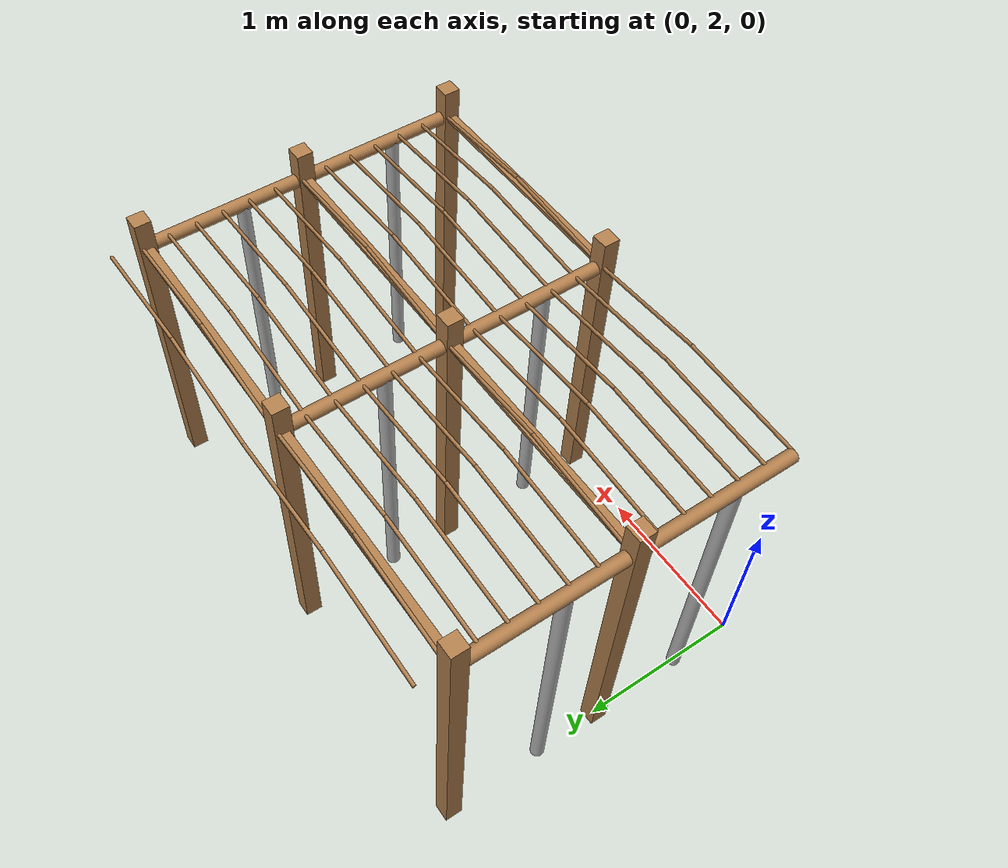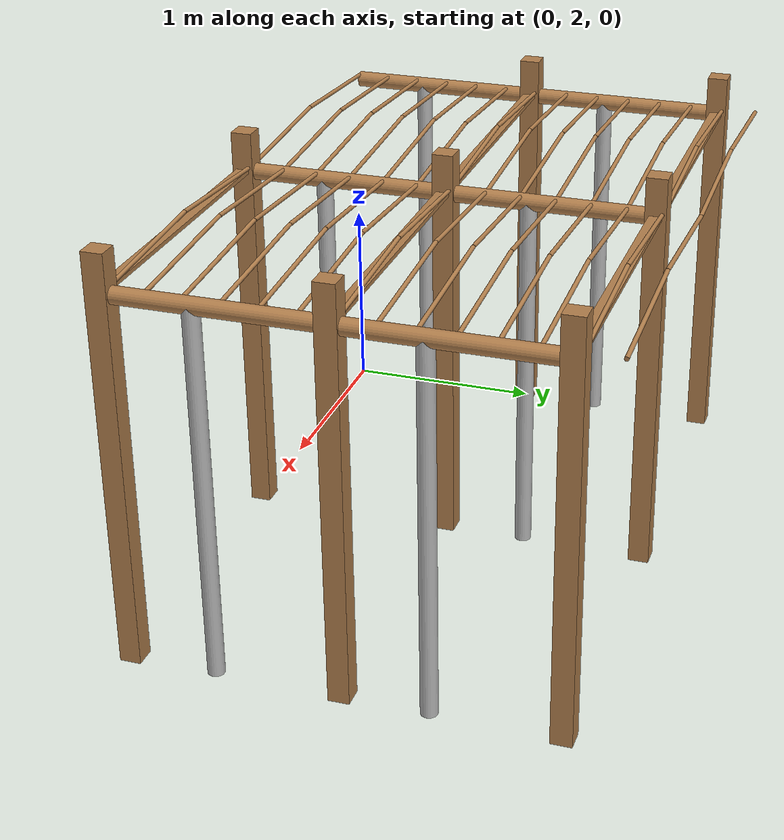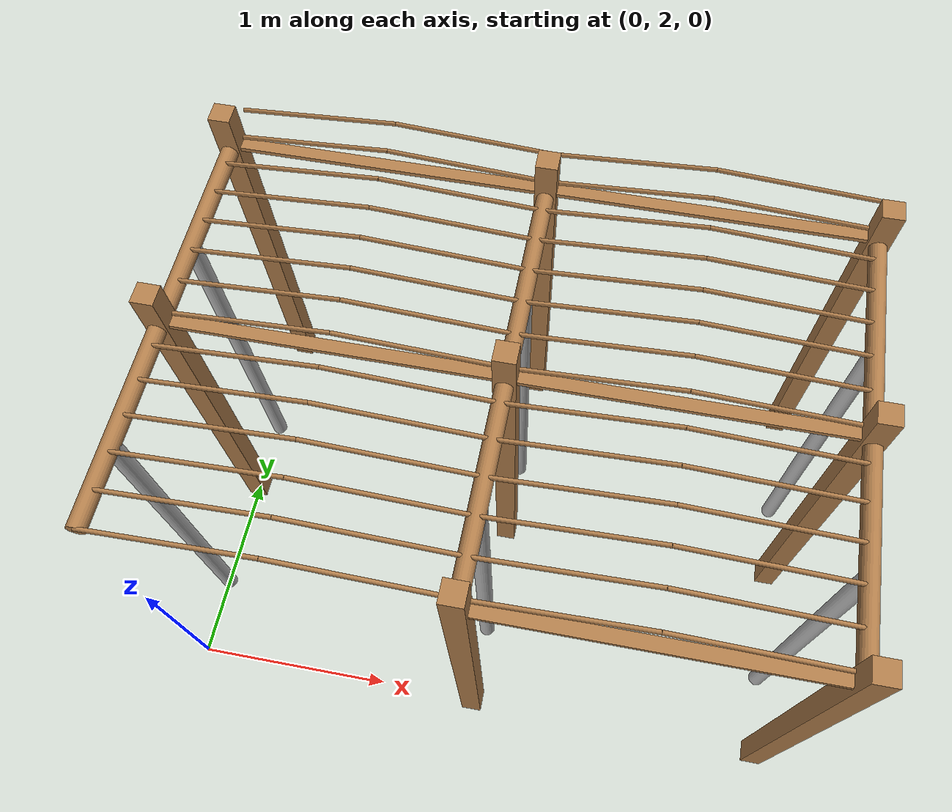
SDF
<sdf version="1.4">
 <model name="pergola">
  <include><name>post_3</name><pose>0.0 3.0 0 0 0 0</pose><uri>model://post</uri></include>
  <include><name>post_4</name><pose>0.0 4.0 0 0 0 0</pose><uri>model://post</uri></include>
  <include><name>post_13</name><pose>1.5 2.0 0 0 0 0</pose><uri>model://post</uri></include>
  <include><name>post_14</name><pose>1.5 3.0 0 0 0 0</pose><uri>model://post</uri></include>
  <include><name>post_15</name><pose>1.5 4.0 0 0 0 0</pose><uri>model://post</uri></include>
  <include><name>post_24</name><pose>3.0 2.0 0 0 0 0</pose><uri>model://post</uri></include>
  <include><name>post_25</name><pose>3.0 3.0 0 0 0 0</pose><uri>model://post</uri></include>
  <include><name>post_26</name><pose>3.0 4.0 0 0 0 0</pose><uri>model://post</uri></include>
  <link name="beam_3">
   <pose>0.75 3.0 1.81 0 0 0</pose>
   <collision name="collision"><geometry><box><size>1.5 0.06 0.02</size></box></geometry></collision>
   <visual name="visual">
    <geometry><box><size>1.5 0.06 0.02</size></box></geometry>
    <material><script><name>Gazebo/Wood</name></script></material>
   </visual>
   <inertial>
    <mass>5</mass>
    <inertia>
     <ixx>0.0016666666666666668</ixx>
     <ixy>0.0</ixy>
     <ixz>0.0</ixz>
     <iyy>0.9390000000000001</iyy>
     <iyz>0.0</iyz>
     <izz>0.9376666666666665</izz>
    </inertia>
   </inertial>
  </link>
  <link name="beam_4">
   <pose>0.75 4.0 1.81 0 0 0</pose>
   <collision name="collision"><geometry><box><size>1.5 0.06 0.02</size></box></geometry></collision>
   <visual name="visual">
    <geometry><box><size>1.5 0.06 0.02</size></box></geometry>
    <material><script><name>Gazebo/Wood</name></script></material>
   </visual>
   <inertial>
    <mass>5</mass>
    <inertia>
     <ixx>0.0016666666666666668</ixx>
     <ixy>0.0</ixy>
     <ixz>0.0</ixz>
     <iyy>0.9390000000000001</iyy>
     <iyz>0.0</iyz>
     <izz>0.9376666666666665</izz>
    </inertia>
   </inertial>
  </link>
  <link name="beam_13">
   <pose>2.25 2.0 1.81 0 0 0</pose>
   <collision name="collision"><geometry><box><size>1.5 0.06 0.02</size></box></geometry></collision>
   <visual name="visual">
    <geometry><box><size>1.5 0.06 0.02</size></box></geometry>
    <material><script><name>Gazebo/Wood</name></script></material>
   </visual>
   <inertial>
    <mass>5</mass>
    <inertia>
     <ixx>0.0016666666666666668</ixx>
     <ixy>0.0</ixy>
     <ixz>0.0</ixz>
     <iyy>0.9390000000000001</iyy>
     <iyz>0.0</iyz>
     <izz>0.9376666666666665</izz>
    </inertia>
   </inertial>
  </link>
  <link name="beam_14">
   <pose>2.25 3.0 1.81 0 0 0</pose>
   <collision name="collision"><geometry><box><size>1.5 0.06 0.02</size></box></geometry></collision>
   <visual name="visual">
    <geometry><box><size>1.5 0.06 0.02</size></box></geometry>
    <material><script><name>Gazebo/Wood</name></script></material>
   </visual>
   <inertial>
    <mass>5</mass>
    <inertia>
     <ixx>0.0016666666666666668</ixx>
     <ixy>0.0</ixy>
     <ixz>0.0</ixz>
     <iyy>0.9390000000000001</iyy>
     <iyz>0.0</iyz>
     <izz>0.9376666666666665</izz>
    </inertia>
   </inertial>
  </link>
  <link name="beam_15">
   <pose>2.25 4.0 1.81 0 0 0</pose>
   <collision name="collision"><geometry><box><size>1.5 0.06 0.02</size></box></geometry></collision>
   <visual name="visual">
    <geometry><box><size>1.5 0.06 0.02</size></box></geometry>
    <material><script><name>Gazebo/Wood</name></script></material>
   </visual>
   <inertial>
    <mass>5</mass>
    <inertia>
     <ixx>0.0016666666666666668</ixx>
     <ixy>0.0</ixy>
     <ixz>0.0</ixz>
     <iyy>0.9390000000000001</iyy>
     <iyz>0.0</iyz>
     <izz>0.9376666666666665</izz>
    </inertia>
   </inertial>
  </link>
  <include><name>tree_2</name><pose>0.0 2.4 0 0 0 0</pose><uri>model://tree_trunk</uri></include>
  <include><name>tree_3</name><pose>0.0 3.4 0 0 0 0</pose><uri>model://tree_trunk</uri></include>
  <include><name>tree_12</name><pose>1.5 2.4 0 0 0 0</pose><uri>model://tree_trunk</uri></include>
  <include><name>tree_13</name><pose>1.5 3.4 0 0 0 0</pose><uri>model://tree_trunk</uri></include>
  <include><name>tree_22</name><pose>3.0 2.4 0 0 0 0</pose><uri>model://tree_trunk</uri></include>
  <include><name>tree_23</name><pose>3.0 3.4 0 0 0 0</pose><uri>model://tree_trunk</uri></include>
  <link name="baseBranch_2">
   <pose>0.0 2.5 1.8 1.5707963267948966 0 0</pose>
   <collision name="collision">
    <geometry><cylinder><radius>0.04</radius><length>0.94</length></cylinder></geometry>
   </collision>
   <visual name="visual">
    <geometry><cylinder><radius>0.04</radius><length>0.94</length></cylinder></geometry>
    <material><script><name>Gazebo/WoodFloor</name></script></material>
   </visual>
   <inertial>
    <mass>10</mass>
    <inertia>
     <ixx>0.7403333333333334</ixx>
     <ixy>0.0</ixy>
     <ixz>0.0</ixz>
     <iyy>0.7403333333333334</iyy>
     <iyz>0.0</iyz>
     <izz>0.008</izz>
    </inertia>
   </inertial>
  </link>
  <link name="baseBranch_3">
   <pose>0.0 3.5 1.8 1.5707963267948966 0 0</pose>
   <collision name="collision">
    <geometry><cylinder><radius>0.04</radius><length>0.94</length></cylinder></geometry>
   </collision>
   <visual name="visual">
    <geometry><cylinder><radius>0.04</radius><length>0.94</length></cylinder></geometry>
    <material><script><name>Gazebo/WoodFloor</name></script></material>
   </visual>
   <inertial>
    <mass>10</mass>
    <inertia>
     <ixx>0.7403333333333334</ixx>
     <ixy>0.0</ixy>
     <ixz>0.0</ixz>
     <iyy>0.7403333333333334</iyy>
     <iyz>0.0</iyz>
     <izz>0.008</izz>
    </inertia>
   </inertial>
  </link>
  <link name="baseBranch_12">
   <pose>1.5 2.5 1.8 1.5707963267948966 0 0</pose>
   <collision name="collision">
    <geometry><cylinder><radius>0.04</radius><length>0.94</length></cylinder></geometry>
   </collision>
   <visual name="visual">
    <geometry><cylinder><radius>0.04</radius><length>0.94</length></cylinder></geometry>
    <material><script><name>Gazebo/WoodFloor</name></script></material>
   </visual>
   <inertial>
    <mass>10</mass>
    <inertia>
     <ixx>0.7403333333333334</ixx>
     <ixy>0.0</ixy>
     <ixz>0.0</ixz>
     <iyy>0.7403333333333334</iyy>
     <iyz>0.0</iyz>
     <izz>0.008</izz>
    </inertia>
   </inertial>
  </link>
  <link name="baseBranch_13">
   <pose>1.5 3.5 1.8 1.5707963267948966 0 0</pose>
   <collision name="collision">
    <geometry><cylinder><radius>0.04</radius><length>0.94</length></cylinder></geometry>
   </collision>
   <visual name="visual">
    <geometry><cylinder><radius>0.04</radius><length>0.94</length></cylinder></geometry>
    <material><script><name>Gazebo/WoodFloor</name></script></material>
   </visual>
   <inertial>
    <mass>10</mass>
    <inertia>
     <ixx>0.7403333333333334</ixx>
     <ixy>0.0</ixy>
     <ixz>0.0</ixz>
     <iyy>0.7403333333333334</iyy>
     <iyz>0.0</iyz>
     <izz>0.008</izz>
    </inertia>
   </inertial>
  </link>
  <link name="baseBranch_22">
   <pose>3.0 2.5 1.8 1.5707963267948966 0 0</pose>
   <collision name="collision">
    <geometry><cylinder><radius>0.04</radius><length>0.94</length></cylinder></geometry>
   </collision>
   <visual name="visual">
    <geometry><cylinder><radius>0.04</radius><length>0.94</length></cylinder></geometry>
    <material><script><name>Gazebo/WoodFloor</name></script></material>
   </visual>
   <inertial>
    <mass>10</mass>
    <inertia>
     <ixx>0.7403333333333334</ixx>
     <ixy>0.0</ixy>
     <ixz>0.0</ixz>
     <iyy>0.7403333333333334</iyy>
     <iyz>0.0</iyz>
     <izz>0.008</izz>
    </inertia>
   </inertial>
  </link>
  <link name="baseBranch_23">
   <pose>3.0 3.5 1.8 1.5707963267948966 0 0</pose>
   <collision name="collision">
    <geometry><cylinder><radius>0.04</radius><length>0.94</length></cylinder></geometry>
   </collision>
   <visual name="visual">
    <geometry><cylinder><radius>0.04</radius><length>0.94</length></cylinder></geometry>
    <material><script><name>Gazebo/WoodFloor</name></script></material>
   </visual>
   <inertial>
    <mass>10</mass>
    <inertia>
     <ixx>0.7403333333333334</ixx>
     <ixy>0.0</ixy>
     <ixz>0.0</ixz>
     <iyy>0.7403333333333334</iyy>
     <iyz>0.0</iyz>
     <izz>0.008</izz>
    </inertia>
   </inertial>
  </link>
  <link name="vine_24">
   <pose>0.375 2.03 1.85 0 1.5042281630190728 0</pose>
   <collision name="collision">
    <geometry><cylinder><radius>0.01</radius><length>0.7516648189186453</length></cylinder></geometry>
   </collision>
   <visual name="visual">
    <geometry><cylinder><radius>0.01</radius><length>0.7516648189186453</length></cylinder></geometry>
    <material><script><name>Gazebo/WoodFloor</name></script></material>
   </visual>
   <inertial>
    <mass>5</mass>
    <inertia>
     <ixx>0.23554166666666657</ixx>
     <ixy>0.0</ixy>
     <ixz>0.0</ixz>
     <iyy>0.23554166666666657</iyy>
     <iyz>0.0</iyz>
     <izz>0.00025</izz>
    </inertia>
   </inertial>
  </link>
  <link name="vine_25">
   <pose>1.125 2.03 1.85 0 -1.5042281630190728 0</pose>
   <collision name="collision">
    <geometry><cylinder><radius>0.01</radius><length>0.7516648189186453</length></cylinder></geometry>
   </collision>
   <visual name="visual">
    <geometry><cylinder><radius>0.01</radius><length>0.7516648189186453</length></cylinder></geometry>
    <material><script><name>Gazebo/WoodFloor</name></script></material>
   </visual>
   <inertial>
    <mass>5</mass>
    <inertia>
     <ixx>0.23554166666666657</ixx>
     <ixy>0.0</ixy>
     <ixz>0.0</ixz>
     <iyy>0.23554166666666657</iyy>
     <iyz>0.0</iyz>
     <izz>0.00025</izz>
    </inertia>
   </inertial>
  </link>
  <link name="vine_26">
   <pose>0.375 2.1966666666666663 1.85 0 1.5042281630190728 0</pose>
   <collision name="collision">
    <geometry><cylinder><radius>0.01</radius><length>0.7516648189186453</length></cylinder></geometry>
   </collision>
   <visual name="visual">
    <geometry><cylinder><radius>0.01</radius><length>0.7516648189186453</length></cylinder></geometry>
    <material><script><name>Gazebo/WoodFloor</name></script></material>
   </visual>
   <inertial>
    <mass>5</mass>
    <inertia>
     <ixx>0.23554166666666657</ixx>
     <ixy>0.0</ixy>
     <ixz>0.0</ixz>
     <iyy>0.23554166666666657</iyy>
     <iyz>0.0</iyz>
     <izz>0.00025</izz>
    </inertia>
   </inertial>
  </link>
  <link name="vine_27">
   <pose>1.125 2.1966666666666663 1.85 0 -1.5042281630190728 0</pose>
   <collision name="collision">
    <geometry><cylinder><radius>0.01</radius><length>0.7516648189186453</length></cylinder></geometry>
   </collision>
   <visual name="visual">
    <geometry><cylinder><radius>0.01</radius><length>0.7516648189186453</length></cylinder></geometry>
    <material><script><name>Gazebo/WoodFloor</name></script></material>
   </visual>
   <inertial>
    <mass>5</mass>
    <inertia>
     <ixx>0.23554166666666657</ixx>
     <ixy>0.0</ixy>
     <ixz>0.0</ixz>
     <iyy>0.23554166666666657</iyy>
     <iyz>0.0</iyz>
     <izz>0.00025</izz>
    </inertia>
   </inertial>
  </link>
  <link name="vine_28">
   <pose>0.375 2.363333333333333 1.85 0 1.5042281630190728 0</pose>
   <collision name="collision">
    <geometry><cylinder><radius>0.01</radius><length>0.7516648189186453</length></cylinder></geometry>
   </collision>
   <visual name="visual">
    <geometry><cylinder><radius>0.01</radius><length>0.7516648189186453</length></cylinder></geometry>
    <material><script><name>Gazebo/WoodFloor</name></script></material>
   </visual>
   <inertial>
    <mass>5</mass>
    <inertia>
     <ixx>0.23554166666666657</ixx>
     <ixy>0.0</ixy>
     <ixz>0.0</ixz>
     <iyy>0.23554166666666657</iyy>
     <iyz>0.0</iyz>
     <izz>0.00025</izz>
    </inertia>
   </inertial>
  </link>
  <link name="vine_29">
   <pose>1.125 2.363333333333333 1.85 0 -1.5042281630190728 0</pose>
   <collision name="collision">
    <geometry><cylinder><radius>0.01</radius><length>0.7516648189186453</length></cylinder></geometry>
   </collision>
   <visual name="visual">
    <geometry><cylinder><radius>0.01</radius><length>0.7516648189186453</length></cylinder></geometry>
    <material><script><name>Gazebo/WoodFloor</name></script></material>
   </visual>
   <inertial>
    <mass>5</mass>
    <inertia>
     <ixx>0.23554166666666657</ixx>
     <ixy>0.0</ixy>
     <ixz>0.0</ixz>
     <iyy>0.23554166666666657</iyy>
     <iyz>0.0</iyz>
     <izz>0.00025</izz>
    </inertia>
   </inertial>
  </link>
  <link name="vine_30">
   <pose>0.375 2.53 1.85 0 1.5042281630190728 0</pose>
   <collision name="collision">
    <geometry><cylinder><radius>0.01</radius><length>0.7516648189186453</length></cylinder></geometry>
   </collision>
   <visual name="visual">
    <geometry><cylinder><radius>0.01</radius><length>0.7516648189186453</length></cylinder></geometry>
    <material><script><name>Gazebo/WoodFloor</name></script></material>
   </visual>
   <inertial>
    <mass>5</mass>
    <inertia>
     <ixx>0.23554166666666657</ixx>
     <ixy>0.0</ixy>
     <ixz>0.0</ixz>
     <iyy>0.23554166666666657</iyy>
     <iyz>0.0</iyz>
     <izz>0.00025</izz>
    </inertia>
   </inertial>
  </link>
  <link name="vine_31">
   <pose>1.125 2.53 1.85 0 -1.5042281630190728 0</pose>
   <collision name="collision">
    <geometry><cylinder><radius>0.01</radius><length>0.7516648189186453</length></cylinder></geometry>
   </collision>
   <visual name="visual">
    <geometry><cylinder><radius>0.01</radius><length>0.7516648189186453</length></cylinder></geometry>
    <material><script><name>Gazebo/WoodFloor</name></script></material>
   </visual>
   <inertial>
    <mass>5</mass>
    <inertia>
     <ixx>0.23554166666666657</ixx>
     <ixy>0.0</ixy>
     <ixz>0.0</ixz>
     <iyy>0.23554166666666657</iyy>
     <iyz>0.0</iyz>
     <izz>0.00025</izz>
    </inertia>
   </inertial>
  </link>
  <link name="vine_32">
   <pose>0.375 2.6966666666666663 1.85 0 1.5042281630190728 0</pose>
   <collision name="collision">
    <geometry><cylinder><radius>0.01</radius><length>0.7516648189186453</length></cylinder></geometry>
   </collision>
   <visual name="visual">
    <geometry><cylinder><radius>0.01</radius><length>0.7516648189186453</length></cylinder></geometry>
    <material><script><name>Gazebo/WoodFloor</name></script></material>
   </visual>
   <inertial>
    <mass>5</mass>
    <inertia>
     <ixx>0.23554166666666657</ixx>
     <ixy>0.0</ixy>
     <ixz>0.0</ixz>
     <iyy>0.23554166666666657</iyy>
     <iyz>0.0</iyz>
     <izz>0.00025</izz>
    </inertia>
   </inertial>
  </link>
  <link name="vine_33">
   <pose>1.125 2.6966666666666663 1.85 0 -1.5042281630190728 0</pose>
   <collision name="collision">
    <geometry><cylinder><radius>0.01</radius><length>0.7516648189186453</length></cylinder></geometry>
   </collision>
   <visual name="visual">
    <geometry><cylinder><radius>0.01</radius><length>0.7516648189186453</length></cylinder></geometry>
    <material><script><name>Gazebo/WoodFloor</name></script></material>
   </visual>
   <inertial>
    <mass>5</mass>
    <inertia>
     <ixx>0.23554166666666657</ixx>
     <ixy>0.0</ixy>
     <ixz>0.0</ixz>
     <iyy>0.23554166666666657</iyy>
     <iyz>0.0</iyz>
     <izz>0.00025</izz>
    </inertia>
   </inertial>
  </link>
  <link name="vine_34">
   <pose>0.375 2.863333333333333 1.85 0 1.5042281630190728 0</pose>
   <collision name="collision">
    <geometry><cylinder><radius>0.01</radius><length>0.7516648189186453</length></cylinder></geometry>
   </collision>
   <visual name="visual">
    <geometry><cylinder><radius>0.01</radius><length>0.7516648189186453</length></cylinder></geometry>
    <material><script><name>Gazebo/WoodFloor</name></script></material>
   </visual>
   <inertial>
    <mass>5</mass>
    <inertia>
     <ixx>0.23554166666666657</ixx>
     <ixy>0.0</ixy>
     <ixz>0.0</ixz>
     <iyy>0.23554166666666657</iyy>
     <iyz>0.0</iyz>
     <izz>0.00025</izz>
    </inertia>
   </inertial>
  </link>
  <link name="vine_35">
   <pose>1.125 2.863333333333333 1.85 0 -1.5042281630190728 0</pose>
   <collision name="collision">
    <geometry><cylinder><radius>0.01</radius><length>0.7516648189186453</length></cylinder></geometry>
   </collision>
   <visual name="visual">
    <geometry><cylinder><radius>0.01</radius><length>0.7516648189186453</length></cylinder></geometry>
    <material><script><name>Gazebo/WoodFloor</name></script></material>
   </visual>
   <inertial>
    <mass>5</mass>
    <inertia>
     <ixx>0.23554166666666657</ixx>
     <ixy>0.0</ixy>
     <ixz>0.0</ixz>
     <iyy>0.23554166666666657</iyy>
     <iyz>0.0</iyz>
     <izz>0.00025</izz>
    </inertia>
   </inertial>
  </link>
  <link name="vine_36">
   <pose>0.375 3.03 1.85 0 1.5042281630190728 0</pose>
   <collision name="collision">
    <geometry><cylinder><radius>0.01</radius><length>0.7516648189186453</length></cylinder></geometry>
   </collision>
   <visual name="visual">
    <geometry><cylinder><radius>0.01</radius><length>0.7516648189186453</length></cylinder></geometry>
    <material><script><name>Gazebo/WoodFloor</name></script></material>
   </visual>
   <inertial>
    <mass>5</mass>
    <inertia>
     <ixx>0.23554166666666657</ixx>
     <ixy>0.0</ixy>
     <ixz>0.0</ixz>
     <iyy>0.23554166666666657</iyy>
     <iyz>0.0</iyz>
     <izz>0.00025</izz>
    </inertia>
   </inertial>
  </link>
  <link name="vine_37">
   <pose>1.125 3.03 1.85 0 -1.5042281630190728 0</pose>
   <collision name="collision">
    <geometry><cylinder><radius>0.01</radius><length>0.7516648189186453</length></cylinder></geometry>
   </collision>
   <visual name="visual">
    <geometry><cylinder><radius>0.01</radius><length>0.7516648189186453</length></cylinder></geometry>
    <material><script><name>Gazebo/WoodFloor</name></script></material>
   </visual>
   <inertial>
    <mass>5</mass>
    <inertia>
     <ixx>0.23554166666666657</ixx>
     <ixy>0.0</ixy>
     <ixz>0.0</ixz>
     <iyy>0.23554166666666657</iyy>
     <iyz>0.0</iyz>
     <izz>0.00025</izz>
    </inertia>
   </inertial>
  </link>
  <link name="vine_38">
   <pose>0.375 3.1966666666666663 1.85 0 1.5042281630190728 0</pose>
   <collision name="collision">
    <geometry><cylinder><radius>0.01</radius><length>0.7516648189186453</length></cylinder></geometry>
   </collision>
   <visual name="visual">
    <geometry><cylinder><radius>0.01</radius><length>0.7516648189186453</length></cylinder></geometry>
    <material><script><name>Gazebo/WoodFloor</name></script></material>
   </visual>
   <inertial>
    <mass>5</mass>
    <inertia>
     <ixx>0.23554166666666657</ixx>
     <ixy>0.0</ixy>
     <ixz>0.0</ixz>
     <iyy>0.23554166666666657</iyy>
     <iyz>0.0</iyz>
     <izz>0.00025</izz>
    </inertia>
   </inertial>
  </link>
  <link name="vine_39">
   <pose>1.125 3.1966666666666663 1.85 0 -1.5042281630190728 0</pose>
   <collision name="collision">
    <geometry><cylinder><radius>0.01</radius><length>0.7516648189186453</length></cylinder></geometry>
   </collision>
   <visual name="visual">
    <geometry><cylinder><radius>0.01</radius><length>0.7516648189186453</length></cylinder></geometry>
    <material><script><name>Gazebo/WoodFloor</name></script></material>
   </visual>
   <inertial>
    <mass>5</mass>
    <inertia>
     <ixx>0.23554166666666657</ixx>
     <ixy>0.0</ixy>
     <ixz>0.0</ixz>
     <iyy>0.23554166666666657</iyy>
     <iyz>0.0</iyz>
     <izz>0.00025</izz>
    </inertia>
   </inertial>
  </link>
  <link name="vine_40">
   <pose>0.375 3.363333333333333 1.85 0 1.5042281630190728 0</pose>
   <collision name="collision">
    <geometry><cylinder><radius>0.01</radius><length>0.7516648189186453</length></cylinder></geometry>
   </collision>
   <visual name="visual">
    <geometry><cylinder><radius>0.01</radius><length>0.7516648189186453</length></cylinder></geometry>
    <material><script><name>Gazebo/WoodFloor</name></script></material>
   </visual>
   <inertial>
    <mass>5</mass>
    <inertia>
     <ixx>0.23554166666666657</ixx>
     <ixy>0.0</ixy>
     <ixz>0.0</ixz>
     <iyy>0.23554166666666657</iyy>
     <iyz>0.0</iyz>
     <izz>0.00025</izz>
    </inertia>
   </inertial>
  </link>
  <link name="vine_41">
   <pose>1.125 3.363333333333333 1.85 0 -1.5042281630190728 0</pose>
   <collision name="collision">
    <geometry><cylinder><radius>0.01</radius><length>0.7516648189186453</length></cylinder></geometry>
   </collision>
   <visual name="visual">
    <geometry><cylinder><radius>0.01</radius><length>0.7516648189186453</length></cylinder></geometry>
    <material><script><name>Gazebo/WoodFloor</name></script></material>
   </visual>
   <inertial>
    <mass>5</mass>
    <inertia>
     <ixx>0.23554166666666657</ixx>
     <ixy>0.0</ixy>
     <ixz>0.0</ixz>
     <iyy>0.23554166666666657</iyy>
     <iyz>0.0</iyz>
     <izz>0.00025</izz>
    </inertia>
   </inertial>
  </link>
  <link name="vine_42">
   <pose>0.375 3.53 1.85 0 1.5042281630190728 0</pose>
   <collision name="collision">
    <geometry><cylinder><radius>0.01</radius><length>0.7516648189186453</length></cylinder></geometry>
   </collision>
   <visual name="visual">
    <geometry><cylinder><radius>0.01</radius><length>0.7516648189186453</length></cylinder></geometry>
    <material><script><name>Gazebo/WoodFloor</name></script></material>
   </visual>
   <inertial>
    <mass>5</mass>
    <inertia>
     <ixx>0.23554166666666657</ixx>
     <ixy>0.0</ixy>
     <ixz>0.0</ixz>
     <iyy>0.23554166666666657</iyy>
     <iyz>0.0</iyz>
     <izz>0.00025</izz>
    </inertia>
   </inertial>
  </link>
  <link name="vine_43">
   <pose>1.125 3.53 1.85 0 -1.5042281630190728 0</pose>
   <collision name="collision">
    <geometry><cylinder><radius>0.01</radius><length>0.7516648189186453</length></cylinder></geometry>
   </collision>
   <visual name="visual">
    <geometry><cylinder><radius>0.01</radius><length>0.7516648189186453</length></cylinder></geometry>
    <material><script><name>Gazebo/WoodFloor</name></script></material>
   </visual>
   <inertial>
    <mass>5</mass>
    <inertia>
     <ixx>0.23554166666666657</ixx>
     <ixy>0.0</ixy>
     <ixz>0.0</ixz>
     <iyy>0.23554166666666657</iyy>
     <iyz>0.0</iyz>
     <izz>0.00025</izz>
    </inertia>
   </inertial>
  </link>
  <link name="vine_44">
   <pose>0.375 3.6966666666666663 1.85 0 1.5042281630190728 0</pose>
   <collision name="collision">
    <geometry><cylinder><radius>0.01</radius><length>0.7516648189186453</length></cylinder></geometry>
   </collision>
   <visual name="visual">
    <geometry><cylinder><radius>0.01</radius><length>0.7516648189186453</length></cylinder></geometry>
    <material><script><name>Gazebo/WoodFloor</name></script></material>
   </visual>
   <inertial>
    <mass>5</mass>
    <inertia>
     <ixx>0.23554166666666657</ixx>
     <ixy>0.0</ixy>
     <ixz>0.0</ixz>
     <iyy>0.23554166666666657</iyy>
     <iyz>0.0</iyz>
     <izz>0.00025</izz>
    </inertia>
   </inertial>
  </link>
  <link name="vine_45">
   <pose>1.125 3.6966666666666663 1.85 0 -1.5042281630190728 0</pose>
   <collision name="collision">
    <geometry><cylinder><radius>0.01</radius><length>0.7516648189186453</length></cylinder></geometry>
   </collision>
   <visual name="visual">
    <geometry><cylinder><radius>0.01</radius><length>0.7516648189186453</length></cylinder></geometry>
    <material><script><name>Gazebo/WoodFloor</name></script></material>
   </visual>
   <inertial>
    <mass>5</mass>
    <inertia>
     <ixx>0.23554166666666657</ixx>
     <ixy>0.0</ixy>
     <ixz>0.0</ixz>
     <iyy>0.23554166666666657</iyy>
     <iyz>0.0</iyz>
     <izz>0.00025</izz>
    </inertia>
   </inertial>
  </link>
  <link name="vine_46">
   <pose>0.375 3.863333333333333 1.85 0 1.5042281630190728 0</pose>
   <collision name="collision">
    <geometry><cylinder><radius>0.01</radius><length>0.7516648189186453</length></cylinder></geometry>
   </collision>
   <visual name="visual">
    <geometry><cylinder><radius>0.01</radius><length>0.7516648189186453</length></cylinder></geometry>
    <material><script><name>Gazebo/WoodFloor</name></script></material>
   </visual>
   <inertial>
    <mass>5</mass>
    <inertia>
     <ixx>0.23554166666666657</ixx>
     <ixy>0.0</ixy>
     <ixz>0.0</ixz>
     <iyy>0.23554166666666657</iyy>
     <iyz>0.0</iyz>
     <izz>0.00025</izz>
    </inertia>
   </inertial>
  </link>
  <link name="vine_47">
   <pose>1.125 3.863333333333333 1.85 0 -1.5042281630190728 0</pose>
   <collision name="collision">
    <geometry><cylinder><radius>0.01</radius><length>0.7516648189186453</length></cylinder></geometry>
   </collision>
   <visual name="visual">
    <geometry><cylinder><radius>0.01</radius><length>0.7516648189186453</length></cylinder></geometry>
    <material><script><name>Gazebo/WoodFloor</name></script></material>
   </visual>
   <inertial>
    <mass>5</mass>
    <inertia>
     <ixx>0.23554166666666657</ixx>
     <ixy>0.0</ixy>
     <ixz>0.0</ixz>
     <iyy>0.23554166666666657</iyy>
     <iyz>0.0</iyz>
     <izz>0.00025</izz>
    </inertia>
   </inertial>
  </link>
  <link name="vine_48">
   <pose>0.375 4.03 1.85 0 1.5042281630190728 0</pose>
   <collision name="collision">
    <geometry><cylinder><radius>0.01</radius><length>0.7516648189186453</length></cylinder></geometry>
   </collision>
   <visual name="visual">
    <geometry><cylinder><radius>0.01</radius><length>0.7516648189186453</length></cylinder></geometry>
    <material><script><name>Gazebo/WoodFloor</name></script></material>
   </visual>
   <inertial>
    <mass>5</mass>
    <inertia>
     <ixx>0.23554166666666657</ixx>
     <ixy>0.0</ixy>
     <ixz>0.0</ixz>
     <iyy>0.23554166666666657</iyy>
     <iyz>0.0</iyz>
     <izz>0.00025</izz>
    </inertia>
   </inertial>
  </link>
  <link name="vine_49">
   <pose>1.125 4.03 1.85 0 -1.5042281630190728 0</pose>
   <collision name="collision">
    <geometry><cylinder><radius>0.01</radius><length>0.7516648189186453</length></cylinder></geometry>
   </collision>
   <visual name="visual">
    <geometry><cylinder><radius>0.01</radius><length>0.7516648189186453</length></cylinder></geometry>
    <material><script><name>Gazebo/WoodFloor</name></script></material>
   </visual>
   <inertial>
    <mass>5</mass>
    <inertia>
     <ixx>0.23554166666666657</ixx>
     <ixy>0.0</ixy>
     <ixz>0.0</ixz>
     <iyy>0.23554166666666657</iyy>
     <iyz>0.0</iyz>
     <izz>0.00025</izz>
    </inertia>
   </inertial>
  </link>
  <link name="vine_50">
   <pose>0.375 4.196666666666666 1.85 0 1.5042281630190728 0</pose>
   <collision name="collision">
    <geometry><cylinder><radius>0.01</radius><length>0.7516648189186453</length></cylinder></geometry>
   </collision>
   <visual name="visual">
    <geometry><cylinder><radius>0.01</radius><length>0.7516648189186453</length></cylinder></geometry>
    <material><script><name>Gazebo/WoodFloor</name></script></material>
   </visual>
   <inertial>
    <mass>5</mass>
    <inertia>
     <ixx>0.23554166666666657</ixx>
     <ixy>0.0</ixy>
     <ixz>0.0</ixz>
     <iyy>0.23554166666666657</iyy>
     <iyz>0.0</iyz>
     <izz>0.00025</izz>
    </inertia>
   </inertial>
  </link>
  <link name="vine_51">
   <pose>1.125 4.196666666666666 1.85 0 -1.5042281630190728 0</pose>
   <collision name="collision">
    <geometry><cylinder><radius>0.01</radius><length>0.7516648189186453</length></cylinder></geometry>
   </collision>
   <visual name="visual">
    <geometry><cylinder><radius>0.01</radius><length>0.7516648189186453</length></cylinder></geometry>
    <material><script><name>Gazebo/WoodFloor</name></script></material>
   </visual>
   <inertial>
    <mass>5</mass>
    <inertia>
     <ixx>0.23554166666666657</ixx>
     <ixy>0.0</ixy>
     <ixz>0.0</ixz>
     <iyy>0.23554166666666657</iyy>
     <iyz>0.0</iyz>
     <izz>0.00025</izz>
    </inertia>
   </inertial>
  </link>
  <link name="vine_144">
   <pose>1.875 2.03 1.85 0 1.5042281630190728 0</pose>
   <collision name="collision">
    <geometry><cylinder><radius>0.01</radius><length>0.7516648189186453</length></cylinder></geometry>
   </collision>
   <visual name="visual">
    <geometry><cylinder><radius>0.01</radius><length>0.7516648189186453</length></cylinder></geometry>
    <material><script><name>Gazebo/WoodFloor</name></script></material>
   </visual>
   <inertial>
    <mass>5</mass>
    <inertia>
     <ixx>0.23554166666666657</ixx>
     <ixy>0.0</ixy>
     <ixz>0.0</ixz>
     <iyy>0.23554166666666657</iyy>
     <iyz>0.0</iyz>
     <izz>0.00025</izz>
    </inertia>
   </inertial>
  </link>
  <link name="vine_145">
   <pose>2.625 2.03 1.85 0 -1.5042281630190728 0</pose>
   <collision name="collision">
    <geometry><cylinder><radius>0.01</radius><length>0.7516648189186453</length></cylinder></geometry>
   </collision>
   <visual name="visual">
    <geometry><cylinder><radius>0.01</radius><length>0.7516648189186453</length></cylinder></geometry>
    <material><script><name>Gazebo/WoodFloor</name></script></material>
   </visual>
   <inertial>
    <mass>5</mass>
    <inertia>
     <ixx>0.23554166666666657</ixx>
     <ixy>0.0</ixy>
     <ixz>0.0</ixz>
     <iyy>0.23554166666666657</iyy>
     <iyz>0.0</iyz>
     <izz>0.00025</izz>
    </inertia>
   </inertial>
  </link>
  <link name="vine_146">
   <pose>1.875 2.1966666666666663 1.85 0 1.5042281630190728 0</pose>
   <collision name="collision">
    <geometry><cylinder><radius>0.01</radius><length>0.7516648189186453</length></cylinder></geometry>
   </collision>
   <visual name="visual">
    <geometry><cylinder><radius>0.01</radius><length>0.7516648189186453</length></cylinder></geometry>
    <material><script><name>Gazebo/WoodFloor</name></script></material>
   </visual>
   <inertial>
    <mass>5</mass>
    <inertia>
     <ixx>0.23554166666666657</ixx>
     <ixy>0.0</ixy>
     <ixz>0.0</ixz>
     <iyy>0.23554166666666657</iyy>
     <iyz>0.0</iyz>
     <izz>0.00025</izz>
    </inertia>
   </inertial>
  </link>
  <link name="vine_147">
   <pose>2.625 2.1966666666666663 1.85 0 -1.5042281630190728 0</pose>
   <collision name="collision">
    <geometry><cylinder><radius>0.01</radius><length>0.7516648189186453</length></cylinder></geometry>
   </collision>
   <visual name="visual">
    <geometry><cylinder><radius>0.01</radius><length>0.7516648189186453</length></cylinder></geometry>
    <material><script><name>Gazebo/WoodFloor</name></script></material>
   </visual>
   <inertial>
    <mass>5</mass>
    <inertia>
     <ixx>0.23554166666666657</ixx>
     <ixy>0.0</ixy>
     <ixz>0.0</ixz>
     <iyy>0.23554166666666657</iyy>
     <iyz>0.0</iyz>
     <izz>0.00025</izz>
    </inertia>
   </inertial>
  </link>
  <link name="vine_148">
   <pose>1.875 2.363333333333333 1.85 0 1.5042281630190728 0</pose>
   <collision name="collision">
    <geometry><cylinder><radius>0.01</radius><length>0.7516648189186453</length></cylinder></geometry>
   </collision>
   <visual name="visual">
    <geometry><cylinder><radius>0.01</radius><length>0.7516648189186453</length></cylinder></geometry>
    <material><script><name>Gazebo/WoodFloor</name></script></material>
   </visual>
   <inertial>
    <mass>5</mass>
    <inertia>
     <ixx>0.23554166666666657</ixx>
     <ixy>0.0</ixy>
     <ixz>0.0</ixz>
     <iyy>0.23554166666666657</iyy>
     <iyz>0.0</iyz>
     <izz>0.00025</izz>
    </inertia>
   </inertial>
  </link>
  <link name="vine_149">
   <pose>2.625 2.363333333333333 1.85 0 -1.5042281630190728 0</pose>
   <collision name="collision">
    <geometry><cylinder><radius>0.01</radius><length>0.7516648189186453</length></cylinder></geometry>
   </collision>
   <visual name="visual">
    <geometry><cylinder><radius>0.01</radius><length>0.7516648189186453</length></cylinder></geometry>
    <material><script><name>Gazebo/WoodFloor</name></script></material>
   </visual>
   <inertial>
    <mass>5</mass>
    <inertia>
     <ixx>0.23554166666666657</ixx>
     <ixy>0.0</ixy>
     <ixz>0.0</ixz>
     <iyy>0.23554166666666657</iyy>
     <iyz>0.0</iyz>
     <izz>0.00025</izz>
    </inertia>
   </inertial>
  </link>
  <link name="vine_150">
   <pose>1.875 2.53 1.85 0 1.5042281630190728 0</pose>
   <collision name="collision">
    <geometry><cylinder><radius>0.01</radius><length>0.7516648189186453</length></cylinder></geometry>
   </collision>
   <visual name="visual">
    <geometry><cylinder><radius>0.01</radius><length>0.7516648189186453</length></cylinder></geometry>
    <material><script><name>Gazebo/WoodFloor</name></script></material>
   </visual>
   <inertial>
    <mass>5</mass>
    <inertia>
     <ixx>0.23554166666666657</ixx>
     <ixy>0.0</ixy>
     <ixz>0.0</ixz>
     <iyy>0.23554166666666657</iyy>
     <iyz>0.0</iyz>
     <izz>0.00025</izz>
    </inertia>
   </inertial>
  </link>
  <link name="vine_151">
   <pose>2.625 2.53 1.85 0 -1.5042281630190728 0</pose>
   <collision name="collision">
    <geometry><cylinder><radius>0.01</radius><length>0.7516648189186453</length></cylinder></geometry>
   </collision>
   <visual name="visual">
    <geometry><cylinder><radius>0.01</radius><length>0.7516648189186453</length></cylinder></geometry>
    <material><script><name>Gazebo/WoodFloor</name></script></material>
   </visual>
   <inertial>
    <mass>5</mass>
    <inertia>
     <ixx>0.23554166666666657</ixx>
     <ixy>0.0</ixy>
     <ixz>0.0</ixz>
     <iyy>0.23554166666666657</iyy>
     <iyz>0.0</iyz>
     <izz>0.00025</izz>
    </inertia>
   </inertial>
  </link>
  <link name="vine_152">
   <pose>1.875 2.6966666666666663 1.85 0 1.5042281630190728 0</pose>
   <collision name="collision">
    <geometry><cylinder><radius>0.01</radius><length>0.7516648189186453</length></cylinder></geometry>
   </collision>
   <visual name="visual">
    <geometry><cylinder><radius>0.01</radius><length>0.7516648189186453</length></cylinder></geometry>
    <material><script><name>Gazebo/WoodFloor</name></script></material>
   </visual>
   <inertial>
    <mass>5</mass>
    <inertia>
     <ixx>0.23554166666666657</ixx>
     <ixy>0.0</ixy>
     <ixz>0.0</ixz>
     <iyy>0.23554166666666657</iyy>
     <iyz>0.0</iyz>
     <izz>0.00025</izz>
    </inertia>
   </inertial>
  </link>
  <link name="vine_153">
   <pose>2.625 2.6966666666666663 1.85 0 -1.5042281630190728 0</pose>
   <collision name="collision">
    <geometry><cylinder><radius>0.01</radius><length>0.7516648189186453</length></cylinder></geometry>
   </collision>
   <visual name="visual">
    <geometry><cylinder><radius>0.01</radius><length>0.7516648189186453</length></cylinder></geometry>
    <material><script><name>Gazebo/WoodFloor</name></script></material>
   </visual>
   <inertial>
    <mass>5</mass>
    <inertia>
     <ixx>0.23554166666666657</ixx>
     <ixy>0.0</ixy>
     <ixz>0.0</ixz>
     <iyy>0.23554166666666657</iyy>
     <iyz>0.0</iyz>
     <izz>0.00025</izz>
    </inertia>
   </inertial>
  </link>
  <link name="vine_154">
   <pose>1.875 2.863333333333333 1.85 0 1.5042281630190728 0</pose>
   <collision name="collision">
    <geometry><cylinder><radius>0.01</radius><length>0.7516648189186453</length></cylinder></geometry>
   </collision>
   <visual name="visual">
    <geometry><cylinder><radius>0.01</radius><length>0.7516648189186453</length></cylinder></geometry>
    <material><script><name>Gazebo/WoodFloor</name></script></material>
   </visual>
   <inertial>
    <mass>5</mass>
    <inertia>
     <ixx>0.23554166666666657</ixx>
     <ixy>0.0</ixy>
     <ixz>0.0</ixz>
     <iyy>0.23554166666666657</iyy>
     <iyz>0.0</iyz>
     <izz>0.00025</izz>
    </inertia>
   </inertial>
  </link>
  <link name="vine_155">
   <pose>2.625 2.863333333333333 1.85 0 -1.5042281630190728 0</pose>
   <collision name="collision">
    <geometry><cylinder><radius>0.01</radius><length>0.7516648189186453</length></cylinder></geometry>
   </collision>
   <visual name="visual">
    <geometry><cylinder><radius>0.01</radius><length>0.7516648189186453</length></cylinder></geometry>
    <material><script><name>Gazebo/WoodFloor</name></script></material>
   </visual>
   <inertial>
    <mass>5</mass>
    <inertia>
     <ixx>0.23554166666666657</ixx>
     <ixy>0.0</ixy>
     <ixz>0.0</ixz>
     <iyy>0.23554166666666657</iyy>
     <iyz>0.0</iyz>
     <izz>0.00025</izz>
    </inertia>
   </inertial>
  </link>
  <link name="vine_156">
   <pose>1.875 3.03 1.85 0 1.5042281630190728 0</pose>
   <collision name="collision">
    <geometry><cylinder><radius>0.01</radius><length>0.7516648189186453</length></cylinder></geometry>
   </collision>
   <visual name="visual">
    <geometry><cylinder><radius>0.01</radius><length>0.7516648189186453</length></cylinder></geometry>
    <material><script><name>Gazebo/WoodFloor</name></script></material>
   </visual>
   <inertial>
    <mass>5</mass>
    <inertia>
     <ixx>0.23554166666666657</ixx>
     <ixy>0.0</ixy>
     <ixz>0.0</ixz>
     <iyy>0.23554166666666657</iyy>
     <iyz>0.0</iyz>
     <izz>0.00025</izz>
    </inertia>
   </inertial>
  </link>
  <link name="vine_157">
   <pose>2.625 3.03 1.85 0 -1.5042281630190728 0</pose>
   <collision name="collision">
    <geometry><cylinder><radius>0.01</radius><length>0.7516648189186453</length></cylinder></geometry>
   </collision>
   <visual name="visual">
    <geometry><cylinder><radius>0.01</radius><length>0.7516648189186453</length></cylinder></geometry>
    <material><script><name>Gazebo/WoodFloor</name></script></material>
   </visual>
   <inertial>
    <mass>5</mass>
    <inertia>
     <ixx>0.23554166666666657</ixx>
     <ixy>0.0</ixy>
     <ixz>0.0</ixz>
     <iyy>0.23554166666666657</iyy>
     <iyz>0.0</iyz>
     <izz>0.00025</izz>
    </inertia>
   </inertial>
  </link>
  <link name="vine_158">
   <pose>1.875 3.1966666666666663 1.85 0 1.5042281630190728 0</pose>
   <collision name="collision">
    <geometry><cylinder><radius>0.01</radius><length>0.7516648189186453</length></cylinder></geometry>
   </collision>
   <visual name="visual">
    <geometry><cylinder><radius>0.01</radius><length>0.7516648189186453</length></cylinder></geometry>
    <material><script><name>Gazebo/WoodFloor</name></script></material>
   </visual>
   <inertial>
    <mass>5</mass>
    <inertia>
     <ixx>0.23554166666666657</ixx>
     <ixy>0.0</ixy>
     <ixz>0.0</ixz>
     <iyy>0.23554166666666657</iyy>
     <iyz>0.0</iyz>
     <izz>0.00025</izz>
    </inertia>
   </inertial>
  </link>
  <link name="vine_159">
   <pose>2.625 3.1966666666666663 1.85 0 -1.5042281630190728 0</pose>
   <collision name="collision">
    <geometry><cylinder><radius>0.01</radius><length>0.7516648189186453</length></cylinder></geometry>
   </collision>
   <visual name="visual">
    <geometry><cylinder><radius>0.01</radius><length>0.7516648189186453</length></cylinder></geometry>
    <material><script><name>Gazebo/WoodFloor</name></script></material>
   </visual>
   <inertial>
    <mass>5</mass>
    <inertia>
     <ixx>0.23554166666666657</ixx>
     <ixy>0.0</ixy>
     <ixz>0.0</ixz>
     <iyy>0.23554166666666657</iyy>
     <iyz>0.0</iyz>
     <izz>0.00025</izz>
    </inertia>
   </inertial>
  </link>
  <link name="vine_160">
   <pose>1.875 3.363333333333333 1.85 0 1.5042281630190728 0</pose>
   <collision name="collision">
    <geometry><cylinder><radius>0.01</radius><length>0.7516648189186453</length></cylinder></geometry>
   </collision>
   <visual name="visual">
    <geometry><cylinder><radius>0.01</radius><length>0.7516648189186453</length></cylinder></geometry>
    <material><script><name>Gazebo/WoodFloor</name></script></material>
   </visual>
   <inertial>
    <mass>5</mass>
    <inertia>
     <ixx>0.23554166666666657</ixx>
     <ixy>0.0</ixy>
     <ixz>0.0</ixz>
     <iyy>0.23554166666666657</iyy>
     <iyz>0.0</iyz>
     <izz>0.00025</izz>
    </inertia>
   </inertial>
  </link>
  <link name="vine_161">
   <pose>2.625 3.363333333333333 1.85 0 -1.5042281630190728 0</pose>
   <collision name="collision">
    <geometry><cylinder><radius>0.01</radius><length>0.7516648189186453</length></cylinder></geometry>
   </collision>
   <visual name="visual">
    <geometry><cylinder><radius>0.01</radius><length>0.7516648189186453</length></cylinder></geometry>
    <material><script><name>Gazebo/WoodFloor</name></script></material>
   </visual>
   <inertial>
    <mass>5</mass>
    <inertia>
     <ixx>0.23554166666666657</ixx>
     <ixy>0.0</ixy>
     <ixz>0.0</ixz>
     <iyy>0.23554166666666657</iyy>
     <iyz>0.0</iyz>
     <izz>0.00025</izz>
    </inertia>
   </inertial>
  </link>
  <link name="vine_162">
   <pose>1.875 3.53 1.85 0 1.5042281630190728 0</pose>
   <collision name="collision">
    <geometry><cylinder><radius>0.01</radius><length>0.7516648189186453</length></cylinder></geometry>
   </collision>
   <visual name="visual">
    <geometry><cylinder><radius>0.01</radius><length>0.7516648189186453</length></cylinder></geometry>
    <material><script><name>Gazebo/WoodFloor</name></script></material>
   </visual>
   <inertial>
    <mass>5</mass>
    <inertia>
     <ixx>0.23554166666666657</ixx>
     <ixy>0.0</ixy>
     <ixz>0.0</ixz>
     <iyy>0.23554166666666657</iyy>
     <iyz>0.0</iyz>
     <izz>0.00025</izz>
    </inertia>
   </inertial>
  </link>
  <link name="vine_163">
   <pose>2.625 3.53 1.85 0 -1.5042281630190728 0</pose>
   <collision name="collision">
    <geometry><cylinder><radius>0.01</radius><length>0.7516648189186453</length></cylinder></geometry>
   </collision>
   <visual name="visual">
    <geometry><cylinder><radius>0.01</radius><length>0.7516648189186453</length></cylinder></geometry>
    <material><script><name>Gazebo/WoodFloor</name></script></material>
   </visual>
   <inertial>
    <mass>5</mass>
    <inertia>
     <ixx>0.23554166666666657</ixx>
     <ixy>0.0</ixy>
     <ixz>0.0</ixz>
     <iyy>0.23554166666666657</iyy>
     <iyz>0.0</iyz>
     <izz>0.00025</izz>
    </inertia>
   </inertial>
  </link>
  <link name="vine_164">
   <pose>1.875 3.6966666666666663 1.85 0 1.5042281630190728 0</pose>
   <collision name="collision">
    <geometry><cylinder><radius>0.01</radius><length>0.7516648189186453</length></cylinder></geometry>
   </collision>
   <visual name="visual">
    <geometry><cylinder><radius>0.01</radius><length>0.7516648189186453</length></cylinder></geometry>
    <material><script><name>Gazebo/WoodFloor</name></script></material>
   </visual>
   <inertial>
    <mass>5</mass>
    <inertia>
     <ixx>0.23554166666666657</ixx>
     <ixy>0.0</ixy>
     <ixz>0.0</ixz>
     <iyy>0.23554166666666657</iyy>
     <iyz>0.0</iyz>
     <izz>0.00025</izz>
    </inertia>
   </inertial>
  </link>
  <link name="vine_165">
   <pose>2.625 3.6966666666666663 1.85 0 -1.5042281630190728 0</pose>
   <collision name="collision">
    <geometry><cylinder><radius>0.01</radius><length>0.7516648189186453</length></cylinder></geometry>
   </collision>
   <visual name="visual">
    <geometry><cylinder><radius>0.01</radius><length>0.7516648189186453</length></cylinder></geometry>
    <material><script><name>Gazebo/WoodFloor</name></script></material>
   </visual>
   <inertial>
    <mass>5</mass>
    <inertia>
     <ixx>0.23554166666666657</ixx>
     <ixy>0.0</ixy>
     <ixz>0.0</ixz>
     <iyy>0.23554166666666657</iyy>
     <iyz>0.0</iyz>
     <izz>0.00025</izz>
    </inertia>
   </inertial>
  </link>
  <link name="vine_166">
   <pose>1.875 3.863333333333333 1.85 0 1.5042281630190728 0</pose>
   <collision name="collision">
    <geometry><cylinder><radius>0.01</radius><length>0.7516648189186453</length></cylinder></geometry>
   </collision>
   <visual name="visual">
    <geometry><cylinder><radius>0.01</radius><length>0.7516648189186453</length></cylinder></geometry>
    <material><script><name>Gazebo/WoodFloor</name></script></material>
   </visual>
   <inertial>
    <mass>5</mass>
    <inertia>
     <ixx>0.23554166666666657</ixx>
     <ixy>0.0</ixy>
     <ixz>0.0</ixz>
     <iyy>0.23554166666666657</iyy>
     <iyz>0.0</iyz>
     <izz>0.00025</izz>
    </inertia>
   </inertial>
  </link>
  <link name="vine_167">
   <pose>2.625 3.863333333333333 1.85 0 -1.5042281630190728 0</pose>
   <collision name="collision">
    <geometry><cylinder><radius>0.01</radius><length>0.7516648189186453</length></cylinder></geometry>
   </collision>
   <visual name="visual">
    <geometry><cylinder><radius>0.01</radius><length>0.7516648189186453</length></cylinder></geometry>
    <material><script><name>Gazebo/WoodFloor</name></script></material>
   </visual>
   <inertial>
    <mass>5</mass>
    <inertia>
     <ixx>0.23554166666666657</ixx>
     <ixy>0.0</ixy>
     <ixz>0.0</ixz>
     <iyy>0.23554166666666657</iyy>
     <iyz>0.0</iyz>
     <izz>0.00025</izz>
    </inertia>
   </inertial>
  </link>
  <link name="vine_168">
   <pose>1.875 4.03 1.85 0 1.5042281630190728 0</pose>
   <collision name="collision">
    <geometry><cylinder><radius>0.01</radius><length>0.7516648189186453</length></cylinder></geometry>
   </collision>
   <visual name="visual">
    <geometry><cylinder><radius>0.01</radius><length>0.7516648189186453</length></cylinder></geometry>
    <material><script><name>Gazebo/WoodFloor</name></script></material>
   </visual>
   <inertial>
    <mass>5</mass>
    <inertia>
     <ixx>0.23554166666666657</ixx>
     <ixy>0.0</ixy>
     <ixz>0.0</ixz>
     <iyy>0.23554166666666657</iyy>
     <iyz>0.0</iyz>
     <izz>0.00025</izz>
    </inertia>
   </inertial>
  </link>
  <link name="vine_169">
   <pose>2.625 4.03 1.85 0 -1.5042281630190728 0</pose>
   <collision name="collision">
    <geometry><cylinder><radius>0.01</radius><length>0.7516648189186453</length></cylinder></geometry>
   </collision>
   <visual name="visual">
    <geometry><cylinder><radius>0.01</radius><length>0.7516648189186453</length></cylinder></geometry>
    <material><script><name>Gazebo/WoodFloor</name></script></material>
   </visual>
   <inertial>
    <mass>5</mass>
    <inertia>
     <ixx>0.23554166666666657</ixx>
     <ixy>0.0</ixy>
     <ixz>0.0</ixz>
     <iyy>0.23554166666666657</iyy>
     <iyz>0.0</iyz>
     <izz>0.00025</izz>
    </inertia>
   </inertial>
  </link>
  <link name="vine_170">
   <pose>1.875 4.196666666666666 1.85 0 1.5042281630190728 0</pose>
   <collision name="collision">
    <geometry><cylinder><radius>0.01</radius><length>0.7516648189186453</length></cylinder></geometry>
   </collision>
   <visual name="visual">
    <geometry><cylinder><radius>0.01</radius><length>0.7516648189186453</length></cylinder></geometry>
    <material><script><name>Gazebo/WoodFloor</name></script></material>
   </visual>
   <inertial>
    <mass>5</mass>
    <inertia>
     <ixx>0.23554166666666657</ixx>
     <ixy>0.0</ixy>
     <ixz>0.0</ixz>
     <iyy>0.23554166666666657</iyy>
     <iyz>0.0</iyz>
     <izz>0.00025</izz>
    </inertia>
   </inertial>
  </link>
  <link name="vine_171">
   <pose>2.625 4.196666666666666 1.85 0 -1.5042281630190728 0</pose>
   <collision name="collision">
    <geometry><cylinder><radius>0.01</radius><length>0.7516648189186453</length></cylinder></geometry>
   </collision>
   <visual name="visual">
    <geometry><cylinder><radius>0.01</radius><length>0.7516648189186453</length></cylinder></geometry>
    <material><script><name>Gazebo/WoodFloor</name></script></material>
   </visual>
   <inertial>
    <mass>5</mass>
    <inertia>
     <ixx>0.23554166666666657</ixx>
     <ixy>0.0</ixy>
     <ixz>0.0</ixz>
     <iyy>0.23554166666666657</iyy>
     <iyz>0.0</iyz>
     <izz>0.00025</izz>
    </inertia>
   </inertial>
  </link>
 </model>
</sdf>
